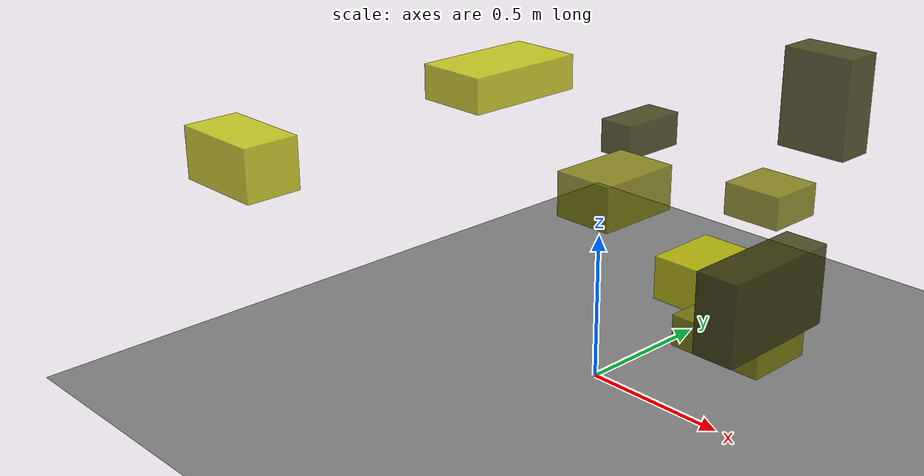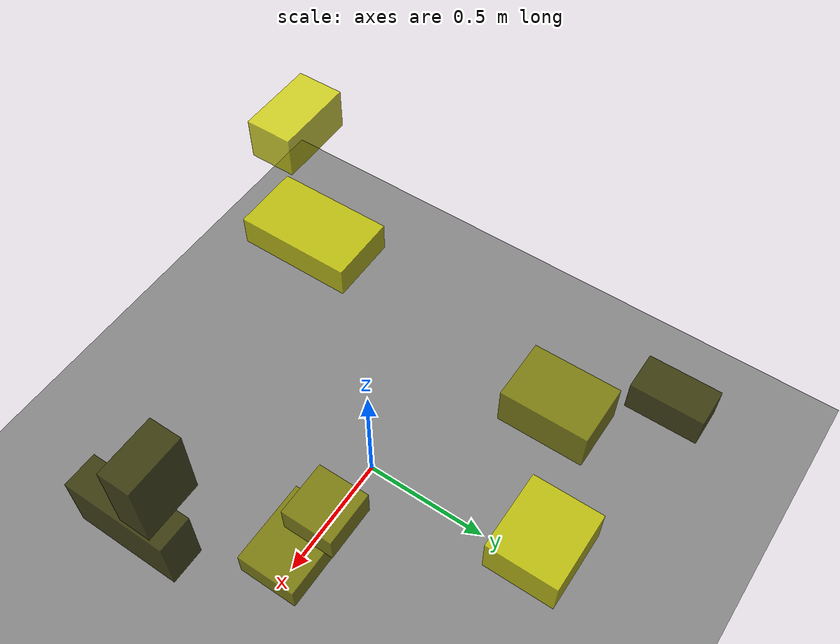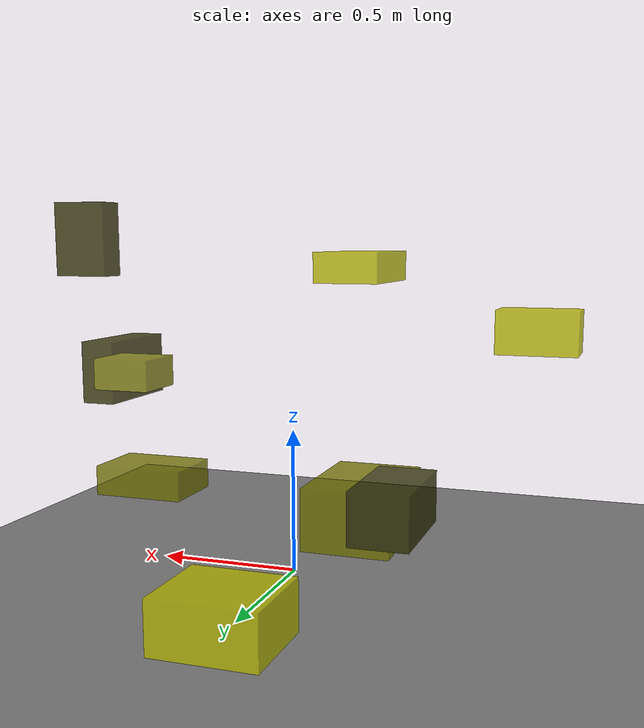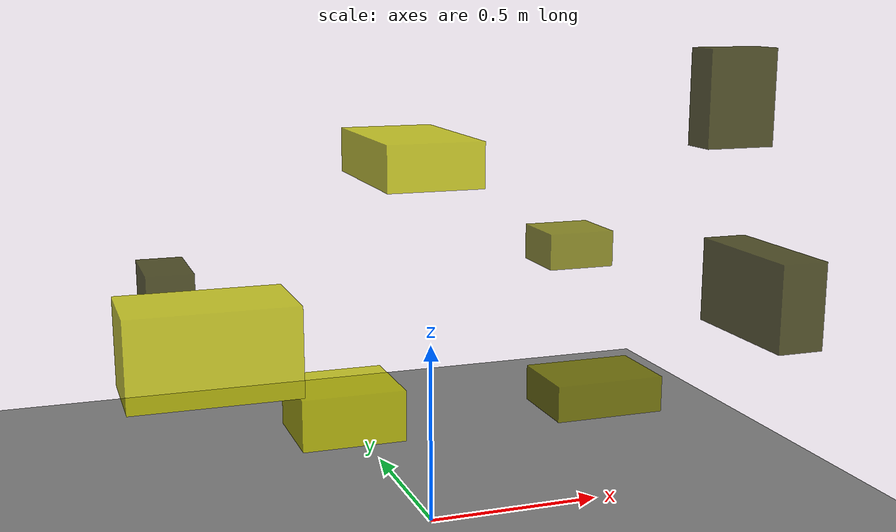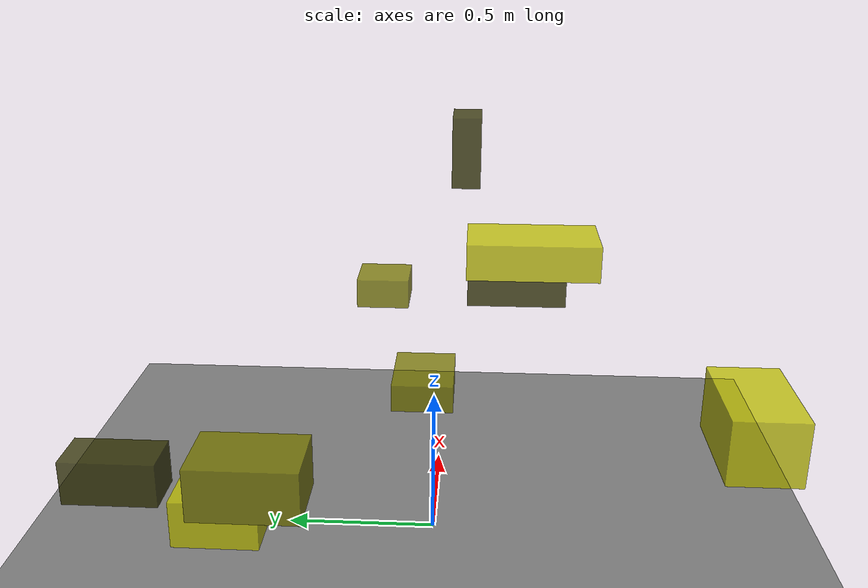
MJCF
<?xml version="1.0"?>
<mujoco model="obstacle_scene">
  <compiler angle="radian" coordinate="local"/>
  <option timestep="0.001" gravity="0 0 -9.81"/>

  <asset>
    <material name="obstacle_mat" rgba="0.8 0.8 0.0 0.8"/>
    <material name="ground_mat" rgba="0.5 0.5 0.5 1"/>
  </asset>

  <worldbody>
    <!-- Ground plane -->
    <geom name="ground" type="plane" size="3 3 0.1" material="ground_mat"/>

    <!-- Obstacles -->
    <body name="obstacle_0" pos="0.836942 -0.083312 1.147284">
      <geom name="obs_0" type="box" size="0.099242 0.053731 0.132658" rgba="0.2 0.2 0.0 0.8"/>
    </body>
    <body name="obstacle_1" pos="0.513018 0.060005 0.312604">
      <geom name="obs_1" type="box" size="0.158745 0.114449 0.051131" rgba="0.5 0.5 0.0 0.8"/>
    </body>
    <body name="obstacle_2" pos="-0.060726 0.714799 0.109382">
      <geom name="obs_2" type="box" size="0.168434 0.148506 0.084202" rgba="0.8 0.8 0.0 0.8"/>
    </body>
    <body name="obstacle_3" pos="-0.590681 0.880348 0.513357">
      <geom name="obs_3" type="box" size="0.074208 0.137752 0.066020" rgba="0.2 0.2 0.0 0.8"/>
    </body>
    <body name="obstacle_4" pos="0.492366 0.205250 0.707368">
      <geom name="obs_4" type="box" size="0.096143 0.092546 0.051079" rgba="0.5 0.5 0.0 0.8"/>
    </body>
    <body name="obstacle_5" pos="-0.150511 -0.293488 1.051287">
      <geom name="obs_5" type="box" size="0.114175 0.193783 0.053176" rgba="0.8 0.8 0.0 0.8"/>
    </body>
    <body name="obstacle_6" pos="0.825308 -0.289985 0.650065">
      <geom name="obs_6" type="box" size="0.063491 0.193027 0.116136" rgba="0.2 0.2 0.0 0.8"/>
    </body>
    <body name="obstacle_7" pos="-0.412042 0.539206 0.406444">
      <geom name="obs_7" type="box" size="0.122770 0.173427 0.086770" rgba="0.5 0.5 0.0 0.8"/>
    </body>
    <body name="obstacle_8" pos="-0.721434 -0.838394 0.787321">
      <geom name="obs_8" type="box" size="0.161236 0.094961 0.087505" rgba="0.8 0.8 0.0 0.8"/>
    </body>
  </worldbody>
</mujoco>
